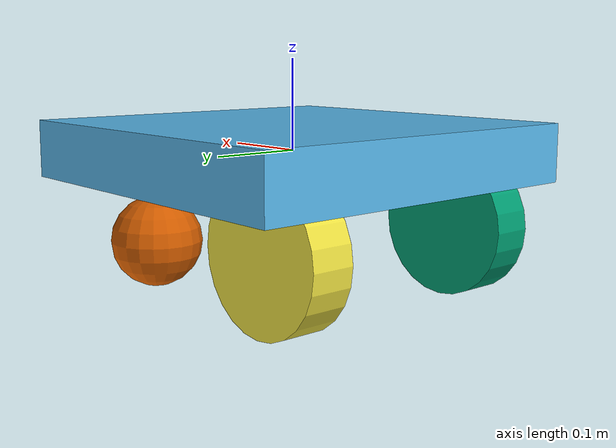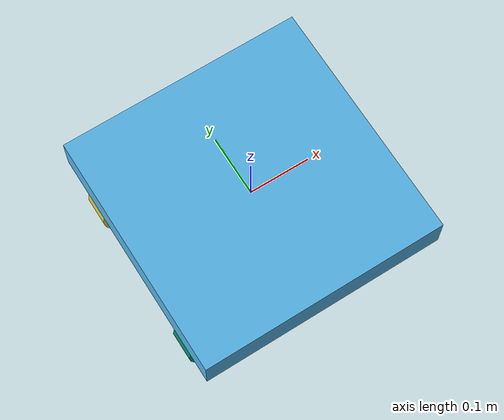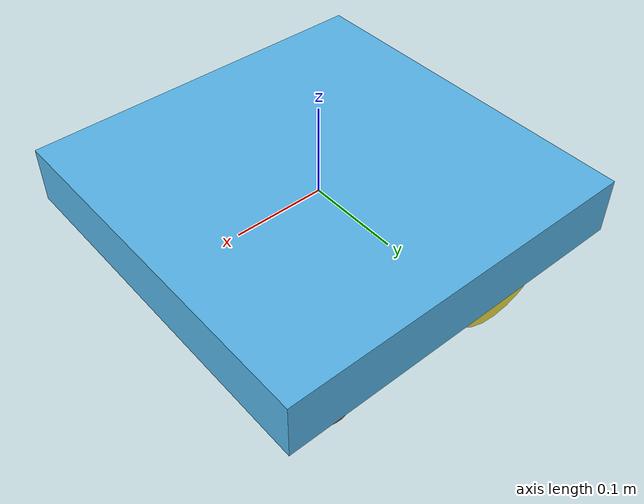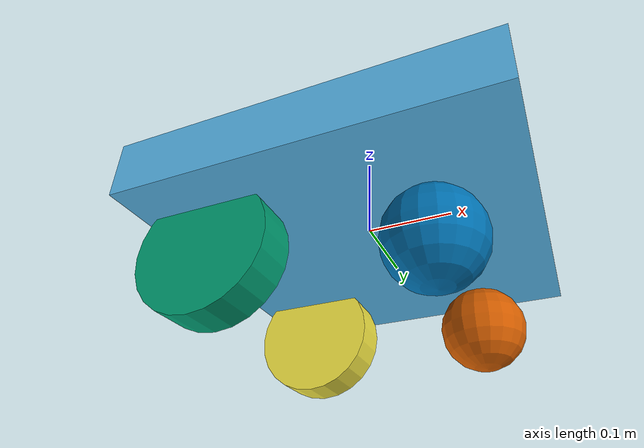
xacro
<?xml version="1.0"?>

<robot name="gmu_hamr" xmlns:xacro="http://www.ros.org/wiki/xacro">

<!-- VARIABLES and CONSTANTS -->

<!-- Body dimensions -->
<xacro:property name="body_link_x_dim" value="0.4004"/>
<xacro:property name="body_link_y_dim" value="0.4003"/>
<xacro:property name="body_link_z_dim" value="0.0635"/>

<!-- Wheel Dimensions and Locations -->
<xacro:property name="wheel_link_radius" value="0.0762"/>
<xacro:property name="wheel_link_length" value="0.04581"/>
<xacro:property name="wheel_link_z_location" value="-0.0762"/>

<!-- Caster sphere dimensions and locations -->
<xacro:property name="caster_link_radius" value="0.0508"/>
<xacro:property name="caster_link_z_location" value="-0.1016"/>

<!-- Material Density -->
<xacro:property name="body_density" value="2710.0"/> <!-- To be changed -->
<xacro:property name="wheel_density" value="2710.0"/> <!-- To be changed -->
<xacro:property name="caster_density" value="2710.0"/> <!-- To be changed -->

<!-- Distance Properties -->
<xacro:property name="s1" value="0.1524"/>
<xacro:property name="s2" value="0.1239"/>
<xacro:property name="s3" value="0.1052"/>
<xacro:property name="s4" value="0.1253"/>
<xacro:property name="s5" value="0.1101"/>
<xacro:property name="r3" value="0.0698"/>

<!-- Robot body mass, wheel mass, caster mass -->
<xacro:property name="body_mass" value="${body_density * body_link_x_dim * body_link_y_dim * body_link_z_dim}"/>
<xacro:property name="wheel_mass" value="${wheel_density * pi * wheel_link_radius * wheel_link_radius * wheel_link_length}"/>
<xacro:property name="caster_mass" value="${caster_density * (4.0 / 3.0) * pi * caster_link_radius * caster_link_radius * caster_link_radius}"/>

<!-- Moments of inertia of the wheel -->
<xacro:property name="Iz_wheel" value="${0.5 * wheel_mass * wheel_link_radius * wheel_link_radius}"/>
<xacro:property name="I_wheel"
value="${(1.0 / 12.0) * wheel_mass * (3.0 * wheel_link_radius * wheel_link_radius + wheel_link_length * wheel_link_length)}"/>

<!-- Moments of inertia of caster -->
<xacro:property name="I_caster" value="${(2.0 / 5.0) * caster_mass * caster_link_radius * caster_link_radius}"/>

<!-- Macro defining the complete inertial section of the wheel -->
<!-- Used later in the code -->
<xacro:macro name="inertia_wheel">
    <inertial>
    <origin rpy="0 0 0" xyz="0 0 0"/>
    <mass value="${wheel_mass}"/>
    <inertia ixx="${I_wheel}" ixy="0.0" ixz="0.0" iyy="${I_wheel}" iyz="0.0" izz="${Iz_wheel}"/>
    </inertial>
</xacro:macro>

<!-- Macro defining the complete inertial section of the caster -->
<!-- Used later in the code -->
<xacro:macro name="inertia_caster">
    <inertial>
    <origin rpy="0 0 0" xyz="0 0 0"/>
    <mass value="${caster_mass}"/>
    <inertia ixx="${I_caster}" ixy="0.0" ixz="0.0" iyy="${I_caster}" iyz="0.0" izz="${I_caster}"/>
    </inertial>
</xacro:macro>

<!-- Include file with extra gazebo options and motion control driver -->
<xacro:include filename="$(find hamr_robot)/model/robot.gazebo"/>

<!-- LINKS and JOINT DEFINITIONS -->

<!-- Dummy link for Gazebo -->
<link name="dummy">
</link>
<joint name="dummy_joint" type="fixed">
    <parent link="dummy"/>
    <child link="body_link"/>
</joint>

<!-- Body link definition -->
<link name="body_link">
    <visual>
        <geometry>
            <box size="${body_link_x_dim} ${body_link_y_dim} ${body_link_z_dim}"/>
        </geometry>

    <origin rpy="0 0 0" xyz="0 0 0"/>
    </visual>

    <collision>
        <geometry>
            <box size="${body_link_x_dim} ${body_link_y_dim} ${body_link_z_dim}"/>
        </geometry>
        <origin rpy="0 0 0" xyz="0 0 0"/>
    </collision>

    <inertial>
        <origin rpy="0 0 0" xyz="0 0 0"/>
        <mass value="${body_mass}"/>
    <inertia
    ixx="${(1/12)*body_mass*(body_link_y_dim*body_link_y_dim + body_link_z_dim*body_link_z_dim)}" ixy="0.0" ixz="0.0"
    iyy="${(1/12)*body_mass*(body_link_x_dim*body_link_x_dim + body_link_z_dim*body_link_z_dim)}" iyz="0.0"
    izz="${(1/12)*body_mass*(body_link_y_dim*body_link_y_dim + body_link_x_dim*body_link_x_dim)}"/>
    </inertial>
</link>

<!-- Back right wheel -->
<joint name="wheel1_joint" type="continuous">
    <parent link="body_link"/>
    <child link="wheel1_link"/>
    <origin xyz="${-s2} ${-s4} ${wheel_link_z_location}" rpy="0 0 0"/>
    <axis xyz="0 1 0"/>
    <limit effort="1000" velocity="1000"/>
    <dynamics damping="1.0" friction="1.0"/>
</joint>

<link name="wheel1_link">
    <visual>
        <origin rpy="1.570795 0 0" xyz="0 0 0"/>
        <geometry>
            <cylinder length="${wheel_link_length}" radius="${wheel_link_radius}"/>
        </geometry>
    </visual>

    <collision>
        <origin rpy="1.570795 0 0" xyz="0 0 0"/>
        <geometry>
            <cylinder length="${wheel_link_length}" radius="${wheel_link_radius}"/>
        </geometry>
    </collision>

    <xacro:inertia_wheel/>
</link>

<!-- Back left wheel -->
<joint name="wheel2_joint" type="continuous">
    <parent link="body_link"/>
    <child link="wheel2_link"/>
    <origin xyz="${-s2} ${s4} ${wheel_link_z_location}" rpy="0 0 0"/>
    <axis xyz="0 1 0"/>
    <limit effort="1000" velocity="1000"/>
    <dynamics damping="1.0" friction="1.0"/>
</joint>

<link name="wheel2_link">
    <visual>
        <origin rpy="1.570795 0 0" xyz="0 0 0"/>
        <geometry>
            <cylinder length="${wheel_link_length}" radius="${wheel_link_radius}"/>
        </geometry>
    </visual>

    <collision>
        <origin rpy="1.570795 0 0" xyz="0 0 0"/>
        <geometry>
            <cylinder length="${wheel_link_length}" radius="${wheel_link_radius}"/>
        </geometry>
    </collision>

    <xacro:inertia_wheel/>
</link>

<!-- Front Right Caster -->
<joint name="caster1_joint" type="fixed">
    <parent link="body_link"/>
    <child link="caster1_link"/>
    <origin xyz="${s3} ${-s5} ${caster_link_z_location}" rpy="0 0 0"/>
</joint>

<link name="caster1_link">
    <visual>
        <origin rpy="0 0 0" xyz="0 0 0"/>
        <geometry>
            <sphere radius="${caster_link_radius}"/>
        </geometry>
    </visual>

    <collision>
        <origin rpy="0 0 0" xyz="0 0 0"/>
        <geometry>
            <sphere radius="${caster_link_radius}"/>
        </geometry>
    </collision>

    <xacro:inertia_caster/>
</link>

<!-- Front Left Caster -->
<joint name="caster2_joint" type="fixed">
    <parent link="body_link"/>
    <child link="caster2_link"/>
    <origin xyz="${s3} ${s5} ${caster_link_z_location}" rpy="0 0 0"/>
</joint>

<link name="caster2_link">
    <visual>
        <origin rpy="0 0 0" xyz="0 0 0"/>
        <geometry>
            <sphere radius="${caster_link_radius}"/>
        </geometry>
    </visual>

    <collision>
        <origin rpy="0 0 0" xyz="0 0 0"/>
        <geometry>
            <sphere radius="${caster_link_radius}"/>
        </geometry>
    </collision>

    <xacro:inertia_caster/>
</link>

</robot>
